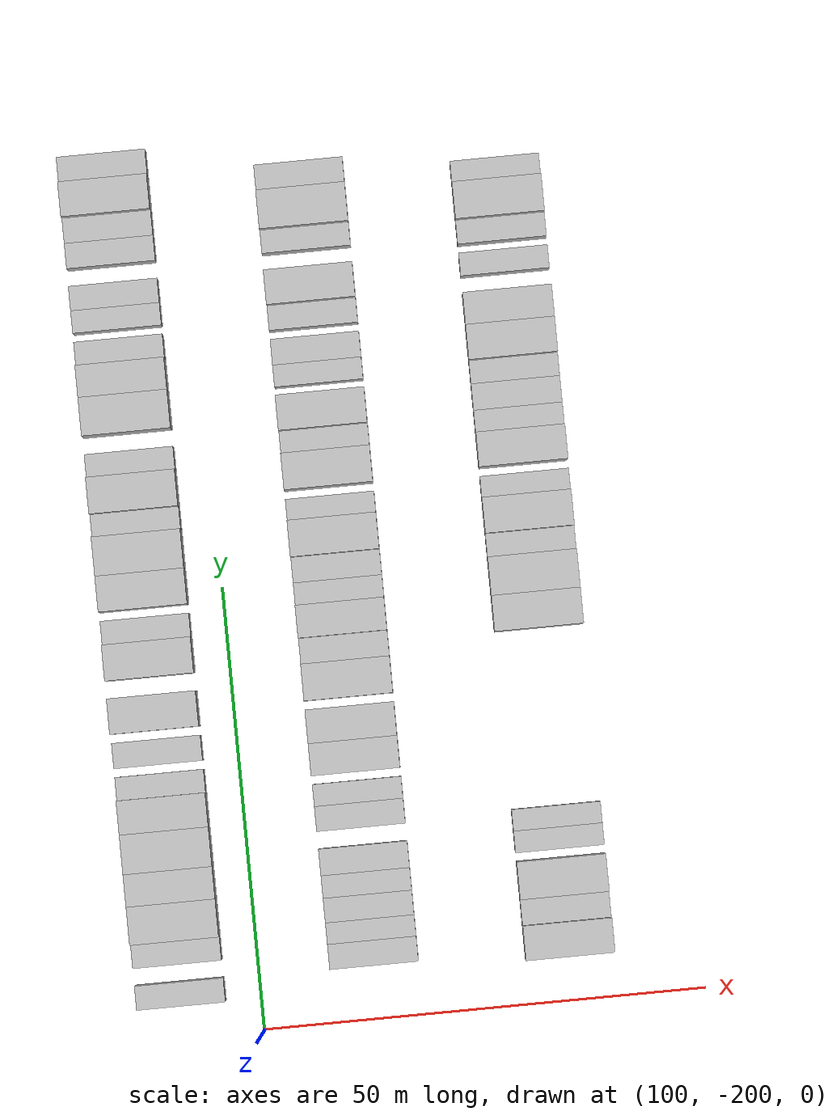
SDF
<sdf version="1.6">
 <world name="default">
  <model name="building_607">
   <static>1</static>
   <pose>91.0000 -195.0355 0 0.000000 0.000000 0.000000</pose>
   <link name="link">
    <pose>0 0 3.00 0 0 0</pose>
    <collision name="collision"><geometry><box><size>10.0000 2.7024 6.0000</size></box></geometry></collision>
    <visual name="visual">
     <cast_shadows>0</cast_shadows>
     <geometry><box><size>10.0000 2.7024 6.0000</size></box></geometry>
     <material>
      <script>
       <uri>model://HANNAS_wall/materials/scripts</uri>
       <uri>model://HANNAS_wall/materials/textures</uri>
       <name>vrc/HANNAS_wall</name>
      </script>
     </material>
    </visual>
   </link>
  </model>
  <model name="building_608">
   <static>1</static>
   <pose>91.0000 -190.3472 0 0.000000 0.000000 0.000000</pose>
   <link name="link">
    <pose>0 0 3.00 0 0 0</pose>
    <collision name="collision"><geometry><box><size>10.0000 2.6742 6.0000</size></box></geometry></collision>
    <visual name="visual">
     <cast_shadows>0</cast_shadows>
     <geometry><box><size>10.0000 2.6742 6.0000</size></box></geometry>
     <material>
      <script>
       <uri>model://HANNAS_wall/materials/scripts</uri>
       <uri>model://HANNAS_wall/materials/textures</uri>
       <name>vrc/HANNAS_wall</name>
      </script>
     </material>
    </visual>
   </link>
  </model>
  <model name="building_609">
   <static>1</static>
   <pose>91.0000 -186.8669 0 0.000000 0.000000 0.000000</pose>
   <link name="link">
    <pose>0 0 4.50 0 0 0</pose>
    <collision name="collision"><geometry><box><size>10.0000 4.2864 9.0000</size></box></geometry></collision>
    <visual name="visual">
     <cast_shadows>0</cast_shadows>
     <geometry><box><size>10.0000 4.2864 9.0000</size></box></geometry>
     <material>
      <script>
       <uri>model://HANNAS_wall/materials/scripts</uri>
       <uri>model://HANNAS_wall/materials/textures</uri>
       <name>vrc/HANNAS_wall</name>
      </script>
     </material>
    </visual>
   </link>
  </model>
  <model name="building_610">
   <static>1</static>
   <pose>91.0000 -182.9008 0 0.000000 0.000000 0.000000</pose>
   <link name="link">
    <pose>0 0 4.50 0 0 0</pose>
    <collision name="collision"><geometry><box><size>10.0000 3.6457 9.0000</size></box></geometry></collision>
    <visual name="visual">
     <cast_shadows>0</cast_shadows>
     <geometry><box><size>10.0000 3.6457 9.0000</size></box></geometry>
     <material>
      <script>
       <uri>model://HANNAS_wall/materials/scripts</uri>
       <uri>model://HANNAS_wall/materials/textures</uri>
       <name>vrc/HANNAS_wall</name>
      </script>
     </material>
    </visual>
   </link>
  </model>
  <model name="building_611">
   <static>1</static>
   <pose>91.0000 -178.8531 0 0.000000 0.000000 0.000000</pose>
   <link name="link">
    <pose>0 0 4.50 0 0 0</pose>
    <collision name="collision"><geometry><box><size>10.0000 4.4498 9.0000</size></box></geometry></collision>
    <visual name="visual">
     <cast_shadows>0</cast_shadows>
     <geometry><box><size>10.0000 4.4498 9.0000</size></box></geometry>
     <material>
      <script>
       <uri>model://HANNAS_wall/materials/scripts</uri>
       <uri>model://HANNAS_wall/materials/textures</uri>
       <name>vrc/HANNAS_wall</name>
      </script>
     </material>
    </visual>
   </link>
  </model>
  <model name="building_612">
   <static>1</static>
   <pose>91.0000 -174.7125 0 0.000000 0.000000 0.000000</pose>
   <link name="link">
    <pose>0 0 4.50 0 0 0</pose>
    <collision name="collision"><geometry><box><size>10.0000 3.8312 9.0000</size></box></geometry></collision>
    <visual name="visual">
     <cast_shadows>0</cast_shadows>
     <geometry><box><size>10.0000 3.8312 9.0000</size></box></geometry>
     <material>
      <script>
       <uri>model://HANNAS_wall/materials/scripts</uri>
       <uri>model://HANNAS_wall/materials/textures</uri>
       <name>vrc/HANNAS_wall</name>
      </script>
     </material>
    </visual>
   </link>
  </model>
  <model name="building_613">
   <static>1</static>
   <pose>91.0000 -171.4870 0 0.000000 0.000000 0.000000</pose>
   <link name="link">
    <pose>0 0 3.00 0 0 0</pose>
    <collision name="collision"><geometry><box><size>10.0000 2.6199 6.0000</size></box></geometry></collision>
    <visual name="visual">
     <cast_shadows>0</cast_shadows>
     <geometry><box><size>10.0000 2.6199 6.0000</size></box></geometry>
     <material>
      <script>
       <uri>model://HANNAS_wall/materials/scripts</uri>
       <uri>model://HANNAS_wall/materials/textures</uri>
       <name>vrc/HANNAS_wall</name>
      </script>
     </material>
    </visual>
   </link>
  </model>
  <model name="building_614">
   <static>1</static>
   <pose>91.0000 -167.7508 0 0.000000 0.000000 0.000000</pose>
   <link name="link">
    <pose>0 0 3.00 0 0 0</pose>
    <collision name="collision"><geometry><box><size>10.0000 2.8524 6.0000</size></box></geometry></collision>
    <visual name="visual">
     <cast_shadows>0</cast_shadows>
     <geometry><box><size>10.0000 2.8524 6.0000</size></box></geometry>
     <material>
      <script>
       <uri>model://HANNAS_wall/materials/scripts</uri>
       <uri>model://HANNAS_wall/materials/textures</uri>
       <name>vrc/HANNAS_wall</name>
      </script>
     </material>
    </visual>
   </link>
  </model>
  <model name="building_615">
   <static>1</static>
   <pose>91.0000 -163.3225 0 0.000000 0.000000 0.000000</pose>
   <link name="link">
    <pose>0 0 4.50 0 0 0</pose>
    <collision name="collision"><geometry><box><size>10.0000 4.0042 9.0000</size></box></geometry></collision>
    <visual name="visual">
     <cast_shadows>0</cast_shadows>
     <geometry><box><size>10.0000 4.0042 9.0000</size></box></geometry>
     <material>
      <script>
       <uri>model://HANNAS_wall/materials/scripts</uri>
       <uri>model://HANNAS_wall/materials/textures</uri>
       <name>vrc/HANNAS_wall</name>
      </script>
     </material>
    </visual>
   </link>
  </model>
  <model name="building_616">
   <static>1</static>
   <pose>91.0000 -157.2884 0 0.000000 0.000000 0.000000</pose>
   <link name="link">
    <pose>0 0 4.50 0 0 0</pose>
    <collision name="collision"><geometry><box><size>10.0000 4.0641 9.0000</size></box></geometry></collision>
    <visual name="visual">
     <cast_shadows>0</cast_shadows>
     <geometry><box><size>10.0000 4.0641 9.0000</size></box></geometry>
     <material>
      <script>
       <uri>model://HANNAS_wall/materials/scripts</uri>
       <uri>model://HANNAS_wall/materials/textures</uri>
       <name>vrc/HANNAS_wall</name>
      </script>
     </material>
    </visual>
   </link>
  </model>
  <model name="building_617">
   <static>1</static>
   <pose>91.0000 -153.9121 0 0.000000 0.000000 0.000000</pose>
   <link name="link">
    <pose>0 0 3.00 0 0 0</pose>
    <collision name="collision"><geometry><box><size>10.0000 2.6884 6.0000</size></box></geometry></collision>
    <visual name="visual">
     <cast_shadows>0</cast_shadows>
     <geometry><box><size>10.0000 2.6884 6.0000</size></box></geometry>
     <material>
      <script>
       <uri>model://HANNAS_wall/materials/scripts</uri>
       <uri>model://HANNAS_wall/materials/textures</uri>
       <name>vrc/HANNAS_wall</name>
      </script>
     </material>
    </visual>
   </link>
  </model>
  <model name="building_618">
   <static>1</static>
   <pose>91.0000 -149.5454 0 0.000000 0.000000 0.000000</pose>
   <link name="link">
    <pose>0 0 4.50 0 0 0</pose>
    <collision name="collision"><geometry><box><size>10.0000 4.0449 9.0000</size></box></geometry></collision>
    <visual name="visual">
     <cast_shadows>0</cast_shadows>
     <geometry><box><size>10.0000 4.0449 9.0000</size></box></geometry>
     <material>
      <script>
       <uri>model://HANNAS_wall/materials/scripts</uri>
       <uri>model://HANNAS_wall/materials/textures</uri>
       <name>vrc/HANNAS_wall</name>
      </script>
     </material>
    </visual>
   </link>
  </model>
  <model name="building_619">
   <static>1</static>
   <pose>91.0000 -145.3140 0 0.000000 0.000000 0.000000</pose>
   <link name="link">
    <pose>0 0 4.50 0 0 0</pose>
    <collision name="collision"><geometry><box><size>10.0000 4.4180 9.0000</size></box></geometry></collision>
    <visual name="visual">
     <cast_shadows>0</cast_shadows>
     <geometry><box><size>10.0000 4.4180 9.0000</size></box></geometry>
     <material>
      <script>
       <uri>model://HANNAS_wall/materials/scripts</uri>
       <uri>model://HANNAS_wall/materials/textures</uri>
       <name>vrc/HANNAS_wall</name>
      </script>
     </material>
    </visual>
   </link>
  </model>
  <model name="building_620">
   <static>1</static>
   <pose>91.0000 -141.8189 0 0.000000 0.000000 0.000000</pose>
   <link name="link">
    <pose>0 0 3.00 0 0 0</pose>
    <collision name="collision"><geometry><box><size>10.0000 2.5723 6.0000</size></box></geometry></collision>
    <visual name="visual">
     <cast_shadows>0</cast_shadows>
     <geometry><box><size>10.0000 2.5723 6.0000</size></box></geometry>
     <material>
      <script>
       <uri>model://HANNAS_wall/materials/scripts</uri>
       <uri>model://HANNAS_wall/materials/textures</uri>
       <name>vrc/HANNAS_wall</name>
      </script>
     </material>
    </visual>
   </link>
  </model>
  <model name="building_621">
   <static>1</static>
   <pose>91.0000 -138.4650 0 0.000000 0.000000 0.000000</pose>
   <link name="link">
    <pose>0 0 4.50 0 0 0</pose>
    <collision name="collision"><geometry><box><size>10.0000 4.1355 9.0000</size></box></geometry></collision>
    <visual name="visual">
     <cast_shadows>0</cast_shadows>
     <geometry><box><size>10.0000 4.1355 9.0000</size></box></geometry>
     <material>
      <script>
       <uri>model://HANNAS_wall/materials/scripts</uri>
       <uri>model://HANNAS_wall/materials/textures</uri>
       <name>vrc/HANNAS_wall</name>
      </script>
     </material>
    </visual>
   </link>
  </model>
  <model name="building_622">
   <static>1</static>
   <pose>91.0000 -135.0795 0 0.000000 0.000000 0.000000</pose>
   <link name="link">
    <pose>0 0 3.00 0 0 0</pose>
    <collision name="collision"><geometry><box><size>10.0000 2.6354 6.0000</size></box></geometry></collision>
    <visual name="visual">
     <cast_shadows>0</cast_shadows>
     <geometry><box><size>10.0000 2.6354 6.0000</size></box></geometry>
     <material>
      <script>
       <uri>model://HANNAS_wall/materials/scripts</uri>
       <uri>model://HANNAS_wall/materials/textures</uri>
       <name>vrc/HANNAS_wall</name>
      </script>
     </material>
    </visual>
   </link>
  </model>
  <model name="building_623">
   <static>1</static>
   <pose>91.0000 -129.5913 0 0.000000 0.000000 0.000000</pose>
   <link name="link">
    <pose>0 0 4.50 0 0 0</pose>
    <collision name="collision"><geometry><box><size>10.0000 4.3410 9.0000</size></box></geometry></collision>
    <visual name="visual">
     <cast_shadows>0</cast_shadows>
     <geometry><box><size>10.0000 4.3410 9.0000</size></box></geometry>
     <material>
      <script>
       <uri>model://HANNAS_wall/materials/scripts</uri>
       <uri>model://HANNAS_wall/materials/textures</uri>
       <name>vrc/HANNAS_wall</name>
      </script>
     </material>
    </visual>
   </link>
  </model>
  <model name="building_624">
   <static>1</static>
   <pose>91.0000 -125.6119 0 0.000000 0.000000 0.000000</pose>
   <link name="link">
    <pose>0 0 4.50 0 0 0</pose>
    <collision name="collision"><geometry><box><size>10.0000 3.6178 9.0000</size></box></geometry></collision>
    <visual name="visual">
     <cast_shadows>0</cast_shadows>
     <geometry><box><size>10.0000 3.6178 9.0000</size></box></geometry>
     <material>
      <script>
       <uri>model://HANNAS_wall/materials/scripts</uri>
       <uri>model://HANNAS_wall/materials/textures</uri>
       <name>vrc/HANNAS_wall</name>
      </script>
     </material>
    </visual>
   </link>
  </model>
  <model name="building_625">
   <static>1</static>
   <pose>91.0000 -122.4425 0 0.000000 0.000000 0.000000</pose>
   <link name="link">
    <pose>0 0 3.00 0 0 0</pose>
    <collision name="collision"><geometry><box><size>10.0000 2.7209 6.0000</size></box></geometry></collision>
    <visual name="visual">
     <cast_shadows>0</cast_shadows>
     <geometry><box><size>10.0000 2.7209 6.0000</size></box></geometry>
     <material>
      <script>
       <uri>model://HANNAS_wall/materials/scripts</uri>
       <uri>model://HANNAS_wall/materials/textures</uri>
       <name>vrc/HANNAS_wall</name>
      </script>
     </material>
    </visual>
   </link>
  </model>
  <model name="building_626">
   <static>1</static>
   <pose>91.0000 -118.8078 0 0.000000 0.000000 0.000000</pose>
   <link name="link">
    <pose>0 0 3.00 0 0 0</pose>
    <collision name="collision"><geometry><box><size>10.0000 2.5485 6.0000</size></box></geometry></collision>
    <visual name="visual">
     <cast_shadows>0</cast_shadows>
     <geometry><box><size>10.0000 2.5485 6.0000</size></box></geometry>
     <material>
      <script>
       <uri>model://HANNAS_wall/materials/scripts</uri>
       <uri>model://HANNAS_wall/materials/textures</uri>
       <name>vrc/HANNAS_wall</name>
      </script>
     </material>
    </visual>
   </link>
  </model>
  <model name="building_627">
   <static>1</static>
   <pose>91.0000 -116.1604 0 0.000000 0.000000 0.000000</pose>
   <link name="link">
    <pose>0 0 3.00 0 0 0</pose>
    <collision name="collision"><geometry><box><size>10.0000 2.7462 6.0000</size></box></geometry></collision>
    <visual name="visual">
     <cast_shadows>0</cast_shadows>
     <geometry><box><size>10.0000 2.7462 6.0000</size></box></geometry>
     <material>
      <script>
       <uri>model://HANNAS_wall/materials/scripts</uri>
       <uri>model://HANNAS_wall/materials/textures</uri>
       <name>vrc/HANNAS_wall</name>
      </script>
     </material>
    </visual>
   </link>
  </model>
  <model name="building_628">
   <static>1</static>
   <pose>91.0000 -111.3632 0 0.000000 0.000000 0.000000</pose>
   <link name="link">
    <pose>0 0 3.00 0 0 0</pose>
    <collision name="collision"><geometry><box><size>10.0000 2.8483 6.0000</size></box></geometry></collision>
    <visual name="visual">
     <cast_shadows>0</cast_shadows>
     <geometry><box><size>10.0000 2.8483 6.0000</size></box></geometry>
     <material>
      <script>
       <uri>model://HANNAS_wall/materials/scripts</uri>
       <uri>model://HANNAS_wall/materials/textures</uri>
       <name>vrc/HANNAS_wall</name>
      </script>
     </material>
    </visual>
   </link>
  </model>
  <model name="building_629">
   <static>1</static>
   <pose>91.0000 -108.5157 0 0.000000 0.000000 0.000000</pose>
   <link name="link">
    <pose>0 0 3.00 0 0 0</pose>
    <collision name="collision"><geometry><box><size>10.0000 2.8467 6.0000</size></box></geometry></collision>
    <visual name="visual">
     <cast_shadows>0</cast_shadows>
     <geometry><box><size>10.0000 2.8467 6.0000</size></box></geometry>
     <material>
      <script>
       <uri>model://HANNAS_wall/materials/scripts</uri>
       <uri>model://HANNAS_wall/materials/textures</uri>
       <name>vrc/HANNAS_wall</name>
      </script>
     </material>
    </visual>
   </link>
  </model>
  <model name="building_630">
   <static>1</static>
   <pose>91.0000 -105.1223 0 0.000000 0.000000 0.000000</pose>
   <link name="link">
    <pose>0 0 4.50 0 0 0</pose>
    <collision name="collision"><geometry><box><size>10.0000 3.9402 9.0000</size></box></geometry></collision>
    <visual name="visual">
     <cast_shadows>0</cast_shadows>
     <geometry><box><size>10.0000 3.9402 9.0000</size></box></geometry>
     <material>
      <script>
       <uri>model://HANNAS_wall/materials/scripts</uri>
       <uri>model://HANNAS_wall/materials/textures</uri>
       <name>vrc/HANNAS_wall</name>
      </script>
     </material>
    </visual>
   </link>
  </model>
  <model name="building_631">
   <static>1</static>
   <pose>91.0000 -101.6788 0 0.000000 0.000000 0.000000</pose>
   <link name="link">
    <pose>0 0 3.00 0 0 0</pose>
    <collision name="collision"><geometry><box><size>10.0000 2.9467 6.0000</size></box></geometry></collision>
    <visual name="visual">
     <cast_shadows>0</cast_shadows>
     <geometry><box><size>10.0000 2.9467 6.0000</size></box></geometry>
     <material>
      <script>
       <uri>model://HANNAS_wall/materials/scripts</uri>
       <uri>model://HANNAS_wall/materials/textures</uri>
       <name>vrc/HANNAS_wall</name>
      </script>
     </material>
    </visual>
   </link>
  </model>
  <model name="building_797">
   <static>1</static>
   <pose>113.0000 -192.4683 0 0.000000 0.000000 0.000000</pose>
   <link name="link">
    <pose>0 0 3.00 0 0 0</pose>
    <collision name="collision"><geometry><box><size>10.0000 2.8301 6.0000</size></box></geometry></collision>
    <visual name="visual">
     <cast_shadows>0</cast_shadows>
     <geometry><box><size>10.0000 2.8301 6.0000</size></box></geometry>
     <material>
      <script>
       <uri>model://HANNAS_wall/materials/scripts</uri>
       <uri>model://HANNAS_wall/materials/textures</uri>
       <name>vrc/HANNAS_wall</name>
      </script>
     </material>
    </visual>
   </link>
  </model>
  <model name="building_798">
   <static>1</static>
   <pose>113.0000 -189.8438 0 0.000000 0.000000 0.000000</pose>
   <link name="link">
    <pose>0 0 3.00 0 0 0</pose>
    <collision name="collision"><geometry><box><size>10.0000 2.4190 6.0000</size></box></geometry></collision>
    <visual name="visual">
     <cast_shadows>0</cast_shadows>
     <geometry><box><size>10.0000 2.4190 6.0000</size></box></geometry>
     <material>
      <script>
       <uri>model://HANNAS_wall/materials/scripts</uri>
       <uri>model://HANNAS_wall/materials/textures</uri>
       <name>vrc/HANNAS_wall</name>
      </script>
     </material>
    </visual>
   </link>
  </model>
  <model name="building_799">
   <static>1</static>
   <pose>113.0000 -187.2519 0 0.000000 0.000000 0.000000</pose>
   <link name="link">
    <pose>0 0 3.00 0 0 0</pose>
    <collision name="collision"><geometry><box><size>10.0000 2.7649 6.0000</size></box></geometry></collision>
    <visual name="visual">
     <cast_shadows>0</cast_shadows>
     <geometry><box><size>10.0000 2.7649 6.0000</size></box></geometry>
     <material>
      <script>
       <uri>model://HANNAS_wall/materials/scripts</uri>
       <uri>model://HANNAS_wall/materials/textures</uri>
       <name>vrc/HANNAS_wall</name>
      </script>
     </material>
    </visual>
   </link>
  </model>
  <model name="building_800">
   <static>1</static>
   <pose>113.0000 -184.5990 0 0.000000 0.000000 0.000000</pose>
   <link name="link">
    <pose>0 0 3.00 0 0 0</pose>
    <collision name="collision"><geometry><box><size>10.0000 2.5408 6.0000</size></box></geometry></collision>
    <visual name="visual">
     <cast_shadows>0</cast_shadows>
     <geometry><box><size>10.0000 2.5408 6.0000</size></box></geometry>
     <material>
      <script>
       <uri>model://HANNAS_wall/materials/scripts</uri>
       <uri>model://HANNAS_wall/materials/textures</uri>
       <name>vrc/HANNAS_wall</name>
      </script>
     </material>
    </visual>
   </link>
  </model>
  <model name="building_801">
   <static>1</static>
   <pose>113.0000 -181.8323 0 0.000000 0.000000 0.000000</pose>
   <link name="link">
    <pose>0 0 3.00 0 0 0</pose>
    <collision name="collision"><geometry><box><size>10.0000 2.9926 6.0000</size></box></geometry></collision>
    <visual name="visual">
     <cast_shadows>0</cast_shadows>
     <geometry><box><size>10.0000 2.9926 6.0000</size></box></geometry>
     <material>
      <script>
       <uri>model://HANNAS_wall/materials/scripts</uri>
       <uri>model://HANNAS_wall/materials/textures</uri>
       <name>vrc/HANNAS_wall</name>
      </script>
     </material>
    </visual>
   </link>
  </model>
  <model name="building_802">
   <static>1</static>
   <pose>113.0000 -176.9291 0 0.000000 0.000000 0.000000</pose>
   <link name="link">
    <pose>0 0 3.00 0 0 0</pose>
    <collision name="collision"><geometry><box><size>10.0000 2.8139 6.0000</size></box></geometry></collision>
    <visual name="visual">
     <cast_shadows>0</cast_shadows>
     <geometry><box><size>10.0000 2.8139 6.0000</size></box></geometry>
     <material>
      <script>
       <uri>model://HANNAS_wall/materials/scripts</uri>
       <uri>model://HANNAS_wall/materials/textures</uri>
       <name>vrc/HANNAS_wall</name>
      </script>
     </material>
    </visual>
   </link>
  </model>
  <model name="building_803">
   <static>1</static>
   <pose>113.0000 -174.2913 0 0.000000 0.000000 0.000000</pose>
   <link name="link">
    <pose>0 0 3.00 0 0 0</pose>
    <collision name="collision"><geometry><box><size>10.0000 2.4616 6.0000</size></box></geometry></collision>
    <visual name="visual">
     <cast_shadows>0</cast_shadows>
     <geometry><box><size>10.0000 2.4616 6.0000</size></box></geometry>
     <material>
      <script>
       <uri>model://HANNAS_wall/materials/scripts</uri>
       <uri>model://HANNAS_wall/materials/textures</uri>
       <name>vrc/HANNAS_wall</name>
      </script>
     </material>
    </visual>
   </link>
  </model>
  <model name="building_804">
   <static>1</static>
   <pose>113.0000 -170.2475 0 0.000000 0.000000 0.000000</pose>
   <link name="link">
    <pose>0 0 4.50 0 0 0</pose>
    <collision name="collision"><geometry><box><size>10.0000 3.6262 9.0000</size></box></geometry></collision>
    <visual name="visual">
     <cast_shadows>0</cast_shadows>
     <geometry><box><size>10.0000 3.6262 9.0000</size></box></geometry>
     <material>
      <script>
       <uri>model://HANNAS_wall/materials/scripts</uri>
       <uri>model://HANNAS_wall/materials/textures</uri>
       <name>vrc/HANNAS_wall</name>
      </script>
     </material>
    </visual>
   </link>
  </model>
  <model name="building_805">
   <static>1</static>
   <pose>113.0000 -166.5388 0 0.000000 0.000000 0.000000</pose>
   <link name="link">
    <pose>0 0 4.50 0 0 0</pose>
    <collision name="collision"><geometry><box><size>10.0000 3.7912 9.0000</size></box></geometry></collision>
    <visual name="visual">
     <cast_shadows>0</cast_shadows>
     <geometry><box><size>10.0000 3.7912 9.0000</size></box></geometry>
     <material>
      <script>
       <uri>model://HANNAS_wall/materials/scripts</uri>
       <uri>model://HANNAS_wall/materials/textures</uri>
       <name>vrc/HANNAS_wall</name>
      </script>
     </material>
    </visual>
   </link>
  </model>
  <model name="building_806">
   <static>1</static>
   <pose>113.0000 -161.5668 0 0.000000 0.000000 0.000000</pose>
   <link name="link">
    <pose>0 0 4.50 0 0 0</pose>
    <collision name="collision"><geometry><box><size>10.0000 4.1526 9.0000</size></box></geometry></collision>
    <visual name="visual">
     <cast_shadows>0</cast_shadows>
     <geometry><box><size>10.0000 4.1526 9.0000</size></box></geometry>
     <material>
      <script>
       <uri>model://HANNAS_wall/materials/scripts</uri>
       <uri>model://HANNAS_wall/materials/textures</uri>
       <name>vrc/HANNAS_wall</name>
      </script>
     </material>
    </visual>
   </link>
  </model>
  <model name="building_807">
   <static>1</static>
   <pose>113.0000 -158.0364 0 0.000000 0.000000 0.000000</pose>
   <link name="link">
    <pose>0 0 3.00 0 0 0</pose>
    <collision name="collision"><geometry><box><size>10.0000 2.9083 6.0000</size></box></geometry></collision>
    <visual name="visual">
     <cast_shadows>0</cast_shadows>
     <geometry><box><size>10.0000 2.9083 6.0000</size></box></geometry>
     <material>
      <script>
       <uri>model://HANNAS_wall/materials/scripts</uri>
       <uri>model://HANNAS_wall/materials/textures</uri>
       <name>vrc/HANNAS_wall</name>
      </script>
     </material>
    </visual>
   </link>
  </model>
  <model name="building_808">
   <static>1</static>
   <pose>113.0000 -154.7317 0 0.000000 0.000000 0.000000</pose>
   <link name="link">
    <pose>0 0 4.50 0 0 0</pose>
    <collision name="collision"><geometry><box><size>10.0000 3.7011 9.0000</size></box></geometry></collision>
    <visual name="visual">
     <cast_shadows>0</cast_shadows>
     <geometry><box><size>10.0000 3.7011 9.0000</size></box></geometry>
     <material>
      <script>
       <uri>model://HANNAS_wall/materials/scripts</uri>
       <uri>model://HANNAS_wall/materials/textures</uri>
       <name>vrc/HANNAS_wall</name>
      </script>
     </material>
    </visual>
   </link>
  </model>
  <model name="building_809">
   <static>1</static>
   <pose>113.0000 -151.6031 0 0.000000 0.000000 0.000000</pose>
   <link name="link">
    <pose>0 0 3.00 0 0 0</pose>
    <collision name="collision"><geometry><box><size>10.0000 2.5561 6.0000</size></box></geometry></collision>
    <visual name="visual">
     <cast_shadows>0</cast_shadows>
     <geometry><box><size>10.0000 2.5561 6.0000</size></box></geometry>
     <material>
      <script>
       <uri>model://HANNAS_wall/materials/scripts</uri>
       <uri>model://HANNAS_wall/materials/textures</uri>
       <name>vrc/HANNAS_wall</name>
      </script>
     </material>
    </visual>
   </link>
  </model>
  <model name="building_810">
   <static>1</static>
   <pose>113.0000 -148.8851 0 0.000000 0.000000 0.000000</pose>
   <link name="link">
    <pose>0 0 3.00 0 0 0</pose>
    <collision name="collision"><geometry><box><size>10.0000 2.8799 6.0000</size></box></geometry></collision>
    <visual name="visual">
     <cast_shadows>0</cast_shadows>
     <geometry><box><size>10.0000 2.8799 6.0000</size></box></geometry>
     <material>
      <script>
       <uri>model://HANNAS_wall/materials/scripts</uri>
       <uri>model://HANNAS_wall/materials/textures</uri>
       <name>vrc/HANNAS_wall</name>
      </script>
     </material>
    </visual>
   </link>
  </model>
  <model name="building_811">
   <static>1</static>
   <pose>113.0000 -145.3818 0 0.000000 0.000000 0.000000</pose>
   <link name="link">
    <pose>0 0 4.50 0 0 0</pose>
    <collision name="collision"><geometry><box><size>10.0000 4.1266 9.0000</size></box></geometry></collision>
    <visual name="visual">
     <cast_shadows>0</cast_shadows>
     <geometry><box><size>10.0000 4.1266 9.0000</size></box></geometry>
     <material>
      <script>
       <uri>model://HANNAS_wall/materials/scripts</uri>
       <uri>model://HANNAS_wall/materials/textures</uri>
       <name>vrc/HANNAS_wall</name>
      </script>
     </material>
    </visual>
   </link>
  </model>
  <model name="building_812">
   <static>1</static>
   <pose>113.0000 -142.1077 0 0.000000 0.000000 0.000000</pose>
   <link name="link">
    <pose>0 0 3.00 0 0 0</pose>
    <collision name="collision"><geometry><box><size>10.0000 2.4216 6.0000</size></box></geometry></collision>
    <visual name="visual">
     <cast_shadows>0</cast_shadows>
     <geometry><box><size>10.0000 2.4216 6.0000</size></box></geometry>
     <material>
      <script>
       <uri>model://HANNAS_wall/materials/scripts</uri>
       <uri>model://HANNAS_wall/materials/textures</uri>
       <name>vrc/HANNAS_wall</name>
      </script>
     </material>
    </visual>
   </link>
  </model>
  <model name="building_813">
   <static>1</static>
   <pose>113.0000 -137.8333 0 0.000000 0.000000 0.000000</pose>
   <link name="link">
    <pose>0 0 4.50 0 0 0</pose>
    <collision name="collision"><geometry><box><size>10.0000 4.1272 9.0000</size></box></geometry></collision>
    <visual name="visual">
     <cast_shadows>0</cast_shadows>
     <geometry><box><size>10.0000 4.1272 9.0000</size></box></geometry>
     <material>
      <script>
       <uri>model://HANNAS_wall/materials/scripts</uri>
       <uri>model://HANNAS_wall/materials/textures</uri>
       <name>vrc/HANNAS_wall</name>
      </script>
     </material>
    </visual>
   </link>
  </model>
  <model name="building_814">
   <static>1</static>
   <pose>113.0000 -134.4955 0 0.000000 0.000000 0.000000</pose>
   <link name="link">
    <pose>0 0 3.00 0 0 0</pose>
    <collision name="collision"><geometry><box><size>10.0000 2.5484 6.0000</size></box></geometry></collision>
    <visual name="visual">
     <cast_shadows>0</cast_shadows>
     <geometry><box><size>10.0000 2.5484 6.0000</size></box></geometry>
     <material>
      <script>
       <uri>model://HANNAS_wall/materials/scripts</uri>
       <uri>model://HANNAS_wall/materials/textures</uri>
       <name>vrc/HANNAS_wall</name>
      </script>
     </material>
    </visual>
   </link>
  </model>
  <model name="building_815">
   <static>1</static>
   <pose>113.0000 -131.2279 0 0.000000 0.000000 0.000000</pose>
   <link name="link">
    <pose>0 0 4.50 0 0 0</pose>
    <collision name="collision"><geometry><box><size>10.0000 3.9867 9.0000</size></box></geometry></collision>
    <visual name="visual">
     <cast_shadows>0</cast_shadows>
     <geometry><box><size>10.0000 3.9867 9.0000</size></box></geometry>
     <material>
      <script>
       <uri>model://HANNAS_wall/materials/scripts</uri>
       <uri>model://HANNAS_wall/materials/textures</uri>
       <name>vrc/HANNAS_wall</name>
      </script>
     </material>
    </visual>
   </link>
  </model>
  <model name="building_816">
   <static>1</static>
   <pose>113.0000 -126.9965 0 0.000000 0.000000 0.000000</pose>
   <link name="link">
    <pose>0 0 3.00 0 0 0</pose>
    <collision name="collision"><geometry><box><size>10.0000 2.4763 6.0000</size></box></geometry></collision>
    <visual name="visual">
     <cast_shadows>0</cast_shadows>
     <geometry><box><size>10.0000 2.4763 6.0000</size></box></geometry>
     <material>
      <script>
       <uri>model://HANNAS_wall/materials/scripts</uri>
       <uri>model://HANNAS_wall/materials/textures</uri>
       <name>vrc/HANNAS_wall</name>
      </script>
     </material>
    </visual>
   </link>
  </model>
  <model name="building_817">
   <static>1</static>
   <pose>113.0000 -124.3013 0 0.000000 0.000000 0.000000</pose>
   <link name="link">
    <pose>0 0 3.00 0 0 0</pose>
    <collision name="collision"><geometry><box><size>10.0000 2.9139 6.0000</size></box></geometry></collision>
    <visual name="visual">
     <cast_shadows>0</cast_shadows>
     <geometry><box><size>10.0000 2.9139 6.0000</size></box></geometry>
     <material>
      <script>
       <uri>model://HANNAS_wall/materials/scripts</uri>
       <uri>model://HANNAS_wall/materials/textures</uri>
       <name>vrc/HANNAS_wall</name>
      </script>
     </material>
    </visual>
   </link>
  </model>
  <model name="building_818">
   <static>1</static>
   <pose>113.0000 -120.4518 0 0.000000 0.000000 0.000000</pose>
   <link name="link">
    <pose>0 0 3.00 0 0 0</pose>
    <collision name="collision"><geometry><box><size>10.0000 2.7852 6.0000</size></box></geometry></collision>
    <visual name="visual">
     <cast_shadows>0</cast_shadows>
     <geometry><box><size>10.0000 2.7852 6.0000</size></box></geometry>
     <material>
      <script>
       <uri>model://HANNAS_wall/materials/scripts</uri>
       <uri>model://HANNAS_wall/materials/textures</uri>
       <name>vrc/HANNAS_wall</name>
      </script>
     </material>
    </visual>
   </link>
  </model>
  <model name="building_819">
   <static>1</static>
   <pose>113.0000 -117.1059 0 0.000000 0.000000 0.000000</pose>
   <link name="link">
    <pose>0 0 4.50 0 0 0</pose>
    <collision name="collision"><geometry><box><size>10.0000 3.9066 9.0000</size></box></geometry></collision>
    <visual name="visual">
     <cast_shadows>0</cast_shadows>
     <geometry><box><size>10.0000 3.9066 9.0000</size></box></geometry>
     <material>
      <script>
       <uri>model://HANNAS_wall/materials/scripts</uri>
       <uri>model://HANNAS_wall/materials/textures</uri>
       <name>vrc/HANNAS_wall</name>
      </script>
     </material>
    </visual>
   </link>
  </model>
  <model name="building_820">
   <static>1</static>
   <pose>113.0000 -111.8433 0 0.000000 0.000000 0.000000</pose>
   <link name="link">
    <pose>0 0 3.00 0 0 0</pose>
    <collision name="collision"><geometry><box><size>10.0000 2.6186 6.0000</size></box></geometry></collision>
    <visual name="visual">
     <cast_shadows>0</cast_shadows>
     <geometry><box><size>10.0000 2.6186 6.0000</size></box></geometry>
     <material>
      <script>
       <uri>model://HANNAS_wall/materials/scripts</uri>
       <uri>model://HANNAS_wall/materials/textures</uri>
       <name>vrc/HANNAS_wall</name>
      </script>
     </material>
    </visual>
   </link>
  </model>
  <model name="building_821">
   <static>1</static>
   <pose>113.0000 -108.3408 0 0.000000 0.000000 0.000000</pose>
   <link name="link">
    <pose>0 0 4.50 0 0 0</pose>
    <collision name="collision"><geometry><box><size>10.0000 4.3865 9.0000</size></box></geometry></collision>
    <visual name="visual">
     <cast_shadows>0</cast_shadows>
     <geometry><box><size>10.0000 4.3865 9.0000</size></box></geometry>
     <material>
      <script>
       <uri>model://HANNAS_wall/materials/scripts</uri>
       <uri>model://HANNAS_wall/materials/textures</uri>
       <name>vrc/HANNAS_wall</name>
      </script>
     </material>
    </visual>
   </link>
  </model>
  <model name="building_822">
   <static>1</static>
   <pose>113.0000 -104.6594 0 0.000000 0.000000 0.000000</pose>
   <link name="link">
    <pose>0 0 3.00 0 0 0</pose>
    <collision name="collision"><geometry><box><size>10.0000 2.9762 6.0000</size></box></geometry></collision>
    <visual name="visual">
     <cast_shadows>0</cast_shadows>
     <geometry><box><size>10.0000 2.9762 6.0000</size></box></geometry>
     <material>
      <script>
       <uri>model://HANNAS_wall/materials/scripts</uri>
       <uri>model://HANNAS_wall/materials/textures</uri>
       <name>vrc/HANNAS_wall</name>
      </script>
     </material>
    </visual>
   </link>
  </model>
  <model name="building_996">
   <static>1</static>
   <pose>135.0000 -192.9640 0 0.000000 0.000000 0.000000</pose>
   <link name="link">
    <pose>0 0 4.50 0 0 0</pose>
    <collision name="collision"><geometry><box><size>10.0000 3.8887 9.0000</size></box></geometry></collision>
    <visual name="visual">
     <cast_shadows>0</cast_shadows>
     <geometry><box><size>10.0000 3.8887 9.0000</size></box></geometry>
     <material>
      <script>
       <uri>model://HANNAS_wall/materials/scripts</uri>
       <uri>model://HANNAS_wall/materials/textures</uri>
       <name>vrc/HANNAS_wall</name>
      </script>
     </material>
    </visual>
   </link>
  </model>
  <model name="building_997">
   <static>1</static>
   <pose>135.0000 -189.5429 0 0.000000 0.000000 0.000000</pose>
   <link name="link">
    <pose>0 0 3.00 0 0 0</pose>
    <collision name="collision"><geometry><box><size>10.0000 2.9536 6.0000</size></box></geometry></collision>
    <visual name="visual">
     <cast_shadows>0</cast_shadows>
     <geometry><box><size>10.0000 2.9536 6.0000</size></box></geometry>
     <material>
      <script>
       <uri>model://HANNAS_wall/materials/scripts</uri>
       <uri>model://HANNAS_wall/materials/textures</uri>
       <name>vrc/HANNAS_wall</name>
      </script>
     </material>
    </visual>
   </link>
  </model>
  <model name="building_998">
   <static>1</static>
   <pose>135.0000 -185.9505 0 0.000000 0.000000 0.000000</pose>
   <link name="link">
    <pose>0 0 4.50 0 0 0</pose>
    <collision name="collision"><geometry><box><size>10.0000 4.2313 9.0000</size></box></geometry></collision>
    <visual name="visual">
     <cast_shadows>0</cast_shadows>
     <geometry><box><size>10.0000 4.2313 9.0000</size></box></geometry>
     <material>
      <script>
       <uri>model://HANNAS_wall/materials/scripts</uri>
       <uri>model://HANNAS_wall/materials/textures</uri>
       <name>vrc/HANNAS_wall</name>
      </script>
     </material>
    </visual>
   </link>
  </model>
  <model name="building_999">
   <static>1</static>
   <pose>135.0000 -181.6084 0 0.000000 0.000000 0.000000</pose>
   <link name="link">
    <pose>0 0 3.00 0 0 0</pose>
    <collision name="collision"><geometry><box><size>10.0000 2.4528 6.0000</size></box></geometry></collision>
    <visual name="visual">
     <cast_shadows>0</cast_shadows>
     <geometry><box><size>10.0000 2.4528 6.0000</size></box></geometry>
     <material>
      <script>
       <uri>model://HANNAS_wall/materials/scripts</uri>
       <uri>model://HANNAS_wall/materials/textures</uri>
       <name>vrc/HANNAS_wall</name>
      </script>
     </material>
    </visual>
   </link>
  </model>
  <model name="building_1000">
   <static>1</static>
   <pose>135.0000 -179.1766 0 0.000000 0.000000 0.000000</pose>
   <link name="link">
    <pose>0 0 3.00 0 0 0</pose>
    <collision name="collision"><geometry><box><size>10.0000 2.4109 6.0000</size></box></geometry></collision>
    <visual name="visual">
     <cast_shadows>0</cast_shadows>
     <geometry><box><size>10.0000 2.4109 6.0000</size></box></geometry>
     <material>
      <script>
       <uri>model://HANNAS_wall/materials/scripts</uri>
       <uri>model://HANNAS_wall/materials/textures</uri>
       <name>vrc/HANNAS_wall</name>
      </script>
     </material>
    </visual>
   </link>
  </model>
  <model name="building_1001">
   <static>1</static>
   <pose>135.0000 -155.8920 0 0.000000 0.000000 0.000000</pose>
   <link name="link">
    <pose>0 0 4.50 0 0 0</pose>
    <collision name="collision"><geometry><box><size>10.0000 4.0528 9.0000</size></box></geometry></collision>
    <visual name="visual">
     <cast_shadows>0</cast_shadows>
     <geometry><box><size>10.0000 4.0528 9.0000</size></box></geometry>
     <material>
      <script>
       <uri>model://HANNAS_wall/materials/scripts</uri>
       <uri>model://HANNAS_wall/materials/textures</uri>
       <name>vrc/HANNAS_wall</name>
      </script>
     </material>
    </visual>
   </link>
  </model>
  <model name="building_1002">
   <static>1</static>
   <pose>135.0000 -151.6956 0 0.000000 0.000000 0.000000</pose>
   <link name="link">
    <pose>0 0 4.50 0 0 0</pose>
    <collision name="collision"><geometry><box><size>10.0000 4.3399 9.0000</size></box></geometry></collision>
    <visual name="visual">
     <cast_shadows>0</cast_shadows>
     <geometry><box><size>10.0000 4.3399 9.0000</size></box></geometry>
     <material>
      <script>
       <uri>model://HANNAS_wall/materials/scripts</uri>
       <uri>model://HANNAS_wall/materials/textures</uri>
       <name>vrc/HANNAS_wall</name>
      </script>
     </material>
    </visual>
   </link>
  </model>
  <model name="building_1003">
   <static>1</static>
   <pose>135.0000 -148.1988 0 0.000000 0.000000 0.000000</pose>
   <link name="link">
    <pose>0 0 3.00 0 0 0</pose>
    <collision name="collision"><geometry><box><size>10.0000 2.6537 6.0000</size></box></geometry></collision>
    <visual name="visual">
     <cast_shadows>0</cast_shadows>
     <geometry><box><size>10.0000 2.6537 6.0000</size></box></geometry>
     <material>
      <script>
       <uri>model://HANNAS_wall/materials/scripts</uri>
       <uri>model://HANNAS_wall/materials/textures</uri>
       <name>vrc/HANNAS_wall</name>
      </script>
     </material>
    </visual>
   </link>
  </model>
  <model name="building_1004">
   <static>1</static>
   <pose>135.0000 -144.8502 0 0.000000 0.000000 0.000000</pose>
   <link name="link">
    <pose>0 0 4.50 0 0 0</pose>
    <collision name="collision"><geometry><box><size>10.0000 4.0435 9.0000</size></box></geometry></collision>
    <visual name="visual">
     <cast_shadows>0</cast_shadows>
     <geometry><box><size>10.0000 4.0435 9.0000</size></box></geometry>
     <material>
      <script>
       <uri>model://HANNAS_wall/materials/scripts</uri>
       <uri>model://HANNAS_wall/materials/textures</uri>
       <name>vrc/HANNAS_wall</name>
      </script>
     </material>
    </visual>
   </link>
  </model>
  <model name="building_1005">
   <static>1</static>
   <pose>135.0000 -141.6155 0 0.000000 0.000000 0.000000</pose>
   <link name="link">
    <pose>0 0 3.00 0 0 0</pose>
    <collision name="collision"><geometry><box><size>10.0000 2.4259 6.0000</size></box></geometry></collision>
    <visual name="visual">
     <cast_shadows>0</cast_shadows>
     <geometry><box><size>10.0000 2.4259 6.0000</size></box></geometry>
     <material>
      <script>
       <uri>model://HANNAS_wall/materials/scripts</uri>
       <uri>model://HANNAS_wall/materials/textures</uri>
       <name>vrc/HANNAS_wall</name>
      </script>
     </material>
    </visual>
   </link>
  </model>
  <model name="building_1006">
   <static>1</static>
   <pose>135.0000 -137.4457 0 0.000000 0.000000 0.000000</pose>
   <link name="link">
    <pose>0 0 4.50 0 0 0</pose>
    <collision name="collision"><geometry><box><size>10.0000 3.9138 9.0000</size></box></geometry></collision>
    <visual name="visual">
     <cast_shadows>0</cast_shadows>
     <geometry><box><size>10.0000 3.9138 9.0000</size></box></geometry>
     <material>
      <script>
       <uri>model://HANNAS_wall/materials/scripts</uri>
       <uri>model://HANNAS_wall/materials/textures</uri>
       <name>vrc/HANNAS_wall</name>
      </script>
     </material>
    </visual>
   </link>
  </model>
  <model name="building_1007">
   <static>1</static>
   <pose>135.0000 -134.2153 0 0.000000 0.000000 0.000000</pose>
   <link name="link">
    <pose>0 0 3.00 0 0 0</pose>
    <collision name="collision"><geometry><box><size>10.0000 2.5470 6.0000</size></box></geometry></collision>
    <visual name="visual">
     <cast_shadows>0</cast_shadows>
     <geometry><box><size>10.0000 2.5470 6.0000</size></box></geometry>
     <material>
      <script>
       <uri>model://HANNAS_wall/materials/scripts</uri>
       <uri>model://HANNAS_wall/materials/textures</uri>
       <name>vrc/HANNAS_wall</name>
      </script>
     </material>
    </visual>
   </link>
  </model>
  <model name="building_1008">
   <static>1</static>
   <pose>135.0000 -131.4485 0 0.000000 0.000000 0.000000</pose>
   <link name="link">
    <pose>0 0 3.00 0 0 0</pose>
    <collision name="collision"><geometry><box><size>10.0000 2.9867 6.0000</size></box></geometry></collision>
    <visual name="visual">
     <cast_shadows>0</cast_shadows>
     <geometry><box><size>10.0000 2.9867 6.0000</size></box></geometry>
     <material>
      <script>
       <uri>model://HANNAS_wall/materials/scripts</uri>
       <uri>model://HANNAS_wall/materials/textures</uri>
       <name>vrc/HANNAS_wall</name>
      </script>
     </material>
    </visual>
   </link>
  </model>
  <model name="building_1009">
   <static>1</static>
   <pose>135.0000 -128.6474 0 0.000000 0.000000 0.000000</pose>
   <link name="link">
    <pose>0 0 3.00 0 0 0</pose>
    <collision name="collision"><geometry><box><size>10.0000 2.6155 6.0000</size></box></geometry></collision>
    <visual name="visual">
     <cast_shadows>0</cast_shadows>
     <geometry><box><size>10.0000 2.6155 6.0000</size></box></geometry>
     <material>
      <script>
       <uri>model://HANNAS_wall/materials/scripts</uri>
       <uri>model://HANNAS_wall/materials/textures</uri>
       <name>vrc/HANNAS_wall</name>
      </script>
     </material>
    </visual>
   </link>
  </model>
  <model name="building_1010">
   <static>1</static>
   <pose>135.0000 -125.3628 0 0.000000 0.000000 0.000000</pose>
   <link name="link">
    <pose>0 0 4.50 0 0 0</pose>
    <collision name="collision"><geometry><box><size>10.0000 3.9537 9.0000</size></box></geometry></collision>
    <visual name="visual">
     <cast_shadows>0</cast_shadows>
     <geometry><box><size>10.0000 3.9537 9.0000</size></box></geometry>
     <material>
      <script>
       <uri>model://HANNAS_wall/materials/scripts</uri>
       <uri>model://HANNAS_wall/materials/textures</uri>
       <name>vrc/HANNAS_wall</name>
      </script>
     </material>
    </visual>
   </link>
  </model>
  <model name="building_1011">
   <static>1</static>
   <pose>135.0000 -121.5831 0 0.000000 0.000000 0.000000</pose>
   <link name="link">
    <pose>0 0 4.50 0 0 0</pose>
    <collision name="collision"><geometry><box><size>10.0000 3.6057 9.0000</size></box></geometry></collision>
    <visual name="visual">
     <cast_shadows>0</cast_shadows>
     <geometry><box><size>10.0000 3.6057 9.0000</size></box></geometry>
     <material>
      <script>
       <uri>model://HANNAS_wall/materials/scripts</uri>
       <uri>model://HANNAS_wall/materials/textures</uri>
       <name>vrc/HANNAS_wall</name>
      </script>
     </material>
    </visual>
   </link>
  </model>
  <model name="building_1012">
   <static>1</static>
   <pose>135.0000 -116.4862 0 0.000000 0.000000 0.000000</pose>
   <link name="link">
    <pose>0 0 3.00 0 0 0</pose>
    <collision name="collision"><geometry><box><size>10.0000 2.5882 6.0000</size></box></geometry></collision>
    <visual name="visual">
     <cast_shadows>0</cast_shadows>
     <geometry><box><size>10.0000 2.5882 6.0000</size></box></geometry>
     <material>
      <script>
       <uri>model://HANNAS_wall/materials/scripts</uri>
       <uri>model://HANNAS_wall/materials/textures</uri>
       <name>vrc/HANNAS_wall</name>
      </script>
     </material>
    </visual>
   </link>
  </model>
  <model name="building_1013">
   <static>1</static>
   <pose>135.0000 -112.8438 0 0.000000 0.000000 0.000000</pose>
   <link name="link">
    <pose>0 0 3.00 0 0 0</pose>
    <collision name="collision"><geometry><box><size>10.0000 2.6964 6.0000</size></box></geometry></collision>
    <visual name="visual">
     <cast_shadows>0</cast_shadows>
     <geometry><box><size>10.0000 2.6964 6.0000</size></box></geometry>
     <material>
      <script>
       <uri>model://HANNAS_wall/materials/scripts</uri>
       <uri>model://HANNAS_wall/materials/textures</uri>
       <name>vrc/HANNAS_wall</name>
      </script>
     </material>
    </visual>
   </link>
  </model>
  <model name="building_1014">
   <static>1</static>
   <pose>135.0000 -109.4063 0 0.000000 0.000000 0.000000</pose>
   <link name="link">
    <pose>0 0 4.50 0 0 0</pose>
    <collision name="collision"><geometry><box><size>10.0000 4.1787 9.0000</size></box></geometry></collision>
    <visual name="visual">
     <cast_shadows>0</cast_shadows>
     <geometry><box><size>10.0000 4.1787 9.0000</size></box></geometry>
     <material>
      <script>
       <uri>model://HANNAS_wall/materials/scripts</uri>
       <uri>model://HANNAS_wall/materials/textures</uri>
       <name>vrc/HANNAS_wall</name>
      </script>
     </material>
    </visual>
   </link>
  </model>
  <model name="building_1015">
   <static>1</static>
   <pose>135.0000 -106.0752 0 0.000000 0.000000 0.000000</pose>
   <link name="link">
    <pose>0 0 3.00 0 0 0</pose>
    <collision name="collision"><geometry><box><size>10.0000 2.4835 6.0000</size></box></geometry></collision>
    <visual name="visual">
     <cast_shadows>0</cast_shadows>
     <geometry><box><size>10.0000 2.4835 6.0000</size></box></geometry>
     <material>
      <script>
       <uri>model://HANNAS_wall/materials/scripts</uri>
       <uri>model://HANNAS_wall/materials/textures</uri>
       <name>vrc/HANNAS_wall</name>
      </script>
     </material>
    </visual>
   </link>
  </model>
 </world>
</sdf>
